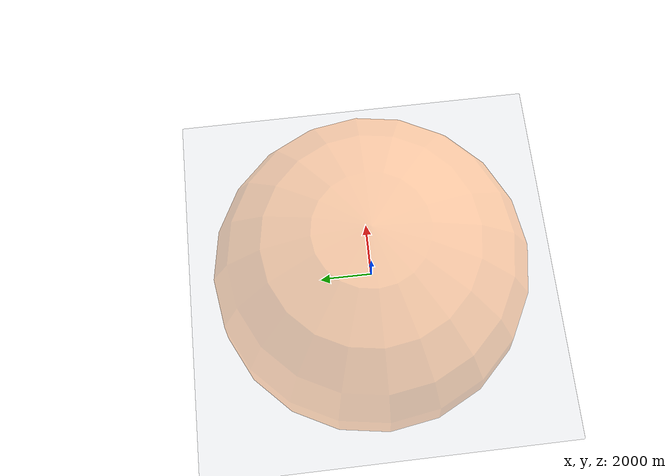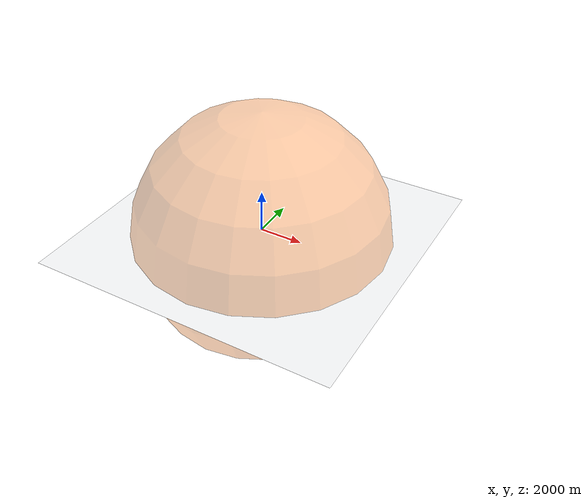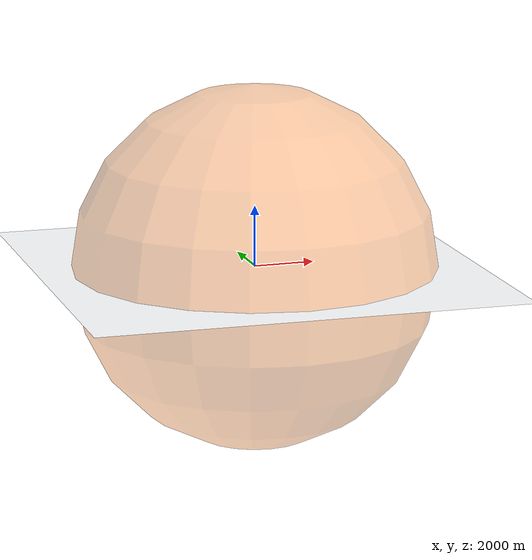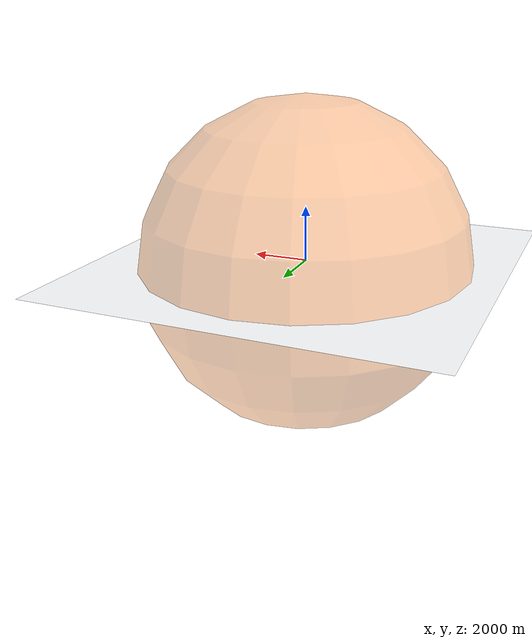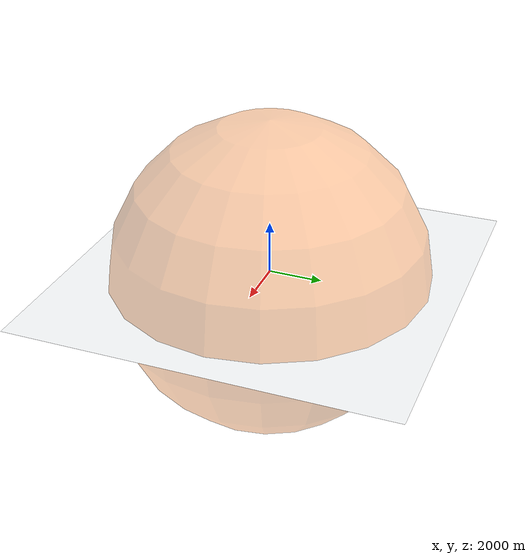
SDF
<?xml version="1.0" ?>
<!-- Ground + target sphere + interceptor boxes. Poses updated via gz set_pose from ROS nodes. -->
<sdf version="1.8">
  <world name="counter_uas_target">
    <scene>
      <ambient>0.75 0.75 0.78 1</ambient>
      <background>0.82 0.84 0.88 1</background>
      <grid>true</grid>
    </scene>
    <gui fullscreen="0">
      <plugin filename="MinimalScene" name="3D View">
        <gz-gui>
          <title>3D View</title>
          <property type="bool" key="showTitleBar">false</property>
          <property type="string" key="state">docked</property>
        </gz-gui>
        <engine>ogre2</engine>
        <scene>scene</scene>
        <ambient_light>0.55 0.55 0.58</ambient_light>
        <background_color>0.82 0.84 0.88</background_color>
        <!-- x y z roll pitch yaw (rad); framed on asset + traffic near origin -->
        <camera_pose>-4200 -3200 1800 0 0.42 0.85</camera_pose>
        <camera_clip>
          <near>1</near>
          <!-- default far (~1000) culls km-scale domes → empty-looking view -->
          <far>80000</far>
        </camera_clip>
      </plugin>
      <plugin filename="EntityContextMenuPlugin" name="Entity context menu">
        <gz-gui>
          <property key="state" type="string">floating</property>
          <property key="width" type="double">5</property>
          <property key="height" type="double">5</property>
          <property key="showTitleBar" type="bool">false</property>
        </gz-gui>
      </plugin>
      <plugin filename="GzSceneManager" name="Scene Manager">
        <gz-gui>
          <property key="resizable" type="bool">false</property>
          <property key="width" type="double">5</property>
          <property key="height" type="double">5</property>
          <property key="state" type="string">floating</property>
          <property key="showTitleBar" type="bool">false</property>
        </gz-gui>
      </plugin>
      <plugin filename="InteractiveViewControl" name="Interactive view control">
        <gz-gui>
          <property key="resizable" type="bool">false</property>
          <property key="width" type="double">5</property>
          <property key="height" type="double">5</property>
          <property key="state" type="string">floating</property>
          <property key="showTitleBar" type="bool">false</property>
        </gz-gui>
      </plugin>
      <plugin filename="CameraTracking" name="Camera Tracking">
        <gz-gui>
          <property key="resizable" type="bool">false</property>
          <property key="width" type="double">5</property>
          <property key="height" type="double">5</property>
          <property key="state" type="string">floating</property>
          <property key="showTitleBar" type="bool">false</property>
        </gz-gui>
      </plugin>
      <plugin filename="WorldControl" name="World control">
        <gz-gui>
          <title>World control</title>
          <property type="bool" key="showTitleBar">false</property>
          <property type="bool" key="resizable">false</property>
          <property type="double" key="height">72</property>
          <property type="double" key="z">1</property>
          <property type="string" key="state">floating</property>
          <anchors target="3D View">
            <line own="left" target="left"/>
            <line own="bottom" target="bottom"/>
          </anchors>
        </gz-gui>
        <play_pause>true</play_pause>
        <step>true</step>
        <start_paused>false</start_paused>
        <use_event>true</use_event>
      </plugin>
      <plugin filename="WorldStats" name="World stats">
        <gz-gui>
          <title>World stats</title>
          <property type="bool" key="showTitleBar">false</property>
          <property type="bool" key="resizable">false</property>
          <property type="double" key="height">110</property>
          <property type="double" key="width">290</property>
          <property type="double" key="z">1</property>
          <property type="string" key="state">floating</property>
          <anchors target="3D View">
            <line own="right" target="right"/>
            <line own="bottom" target="bottom"/>
          </anchors>
        </gz-gui>
        <sim_time>true</sim_time>
        <real_time>true</real_time>
        <real_time_factor>true</real_time_factor>
        <iterations>true</iterations>
      </plugin>
      <plugin filename="ComponentInspector" name="Component inspector">
        <gz-gui>
          <property type="string" key="state">docked</property>
        </gz-gui>
      </plugin>
      <plugin filename="EntityTree" name="Entity tree">
        <gz-gui>
          <property type="string" key="state">docked</property>
        </gz-gui>
      </plugin>
    </gui>
    <physics name="1ms" type="ignored">
      <max_step_size>0.001</max_step_size>
      <real_time_factor>1.0</real_time_factor>
    </physics>
    <plugin filename="gz-sim-physics-system" name="gz::sim::systems::Physics"/>
    <plugin filename="gz-sim-user-commands-system" name="gz::sim::systems::UserCommands"/>
    <plugin filename="gz-sim-scene-broadcaster-system" name="gz::sim::systems::SceneBroadcaster"/>
    <plugin filename="gz-sim-contact-system" name="gz::sim::systems::Contact"/>

    <light type="directional" name="sun">
      <cast_shadows>false</cast_shadows>
      <pose>0 0 10 0 0 0</pose>
      <diffuse>0.9 0.9 0.9 1</diffuse>
      <specular>0.3 0.3 0.3 1</specular>
      <attenuation>
        <range>25000</range>
        <constant>0.9</constant>
        <linear>0.01</linear>
        <quadratic>0.001</quadratic>
      </attenuation>
      <direction>-0.5 0.1 -0.9</direction>
    </light>

    <model name="ground_plane">
      <static>true</static>
      <link name="link">
        <collision name="collision">
          <geometry>
            <plane>
              <normal>0 0 1</normal>
              <size>14000 14000</size>
            </plane>
          </geometry>
        </collision>
        <visual name="visual">
          <geometry>
            <plane>
              <normal>0 0 1</normal>
              <size>14000 14000</size>
            </plane>
          </geometry>
          <material>
            <ambient>0.82 0.84 0.86 1</ambient>
            <diffuse>0.88 0.9 0.92 1</diffuse>
          </material>
        </visual>
      </link>
    </model>

    <!-- Multi-target world: three hostiles as neutral boxes (no orange/pink spheres). -->
    <model name="sphere_target_0">
      <static>false</static>
      <!-- Matches gazebo_target_multi.launch.py targets_cfg sphere_target_0 -->
      <pose>0 0 36 0 0 0</pose>
      <link name="base_link">
        <gravity>false</gravity>
        <inertial>
          <mass>1.0</mass>
          <inertia>
            <ixx>0.121</ixx>
            <ixy>0.0</ixy>
            <ixz>0.0</ixz>
            <iyy>0.121</iyy>
            <iyz>0.0</iyz>
            <izz>0.121</izz>
          </inertia>
        </inertial>
        <collision name="col">
          <geometry>
            <sphere>
              <radius>0.72</radius>
            </sphere>
          </geometry>
        </collision>
        <sensor name="impact_contact" type="contact">
          <always_on>1</always_on>
          <update_rate>200</update_rate>
          <contact>
            <collision>col</collision>
            <topic>/counter_uas_sphere_target_0_contacts</topic>
          </contact>
        </sensor>
        <visual name="vis">
          <geometry>
            <box><size>2.2 2.2 1.0</size></box>
          </geometry>
          <material>
            <ambient>0.22 0.24 0.28 1</ambient>
            <diffuse>0.32 0.34 0.4 1</diffuse>
            <emissive>0.05 0.05 0.08 1</emissive>
          </material>
        </visual>
        <!-- Sight halo (red): visible at km-scale camera distance; collision unchanged. -->
        <visual name="sight_icon">
          <pose>0 0 0.5 0 0 0</pose>
          <geometry>
            <sphere><radius>60</radius></sphere>
          </geometry>
          <material>
            <ambient>0.85 0.12 0.12 1</ambient>
            <diffuse>1.0 0.2 0.2 1</diffuse>
            <emissive>0.4 0.05 0.05 1</emissive>
          </material>
          <transparency>0.55</transparency>
          <cast_shadows>false</cast_shadows>
        </visual>
      </link>
    </model>
    <model name="sphere_target_1">
      <static>false</static>
      <pose>-6 5 34 0 0 0</pose>
      <link name="base_link">
        <gravity>false</gravity>
        <inertial>
          <mass>1.0</mass>
          <inertia>
            <ixx>0.121</ixx>
            <ixy>0.0</ixy>
            <ixz>0.0</ixz>
            <iyy>0.121</iyy>
            <iyz>0.0</iyz>
            <izz>0.121</izz>
          </inertia>
        </inertial>
        <collision name="col">
          <geometry>
            <sphere>
              <radius>0.72</radius>
            </sphere>
          </geometry>
        </collision>
        <sensor name="impact_contact" type="contact">
          <always_on>1</always_on>
          <update_rate>200</update_rate>
          <contact>
            <collision>col</collision>
            <topic>/counter_uas_sphere_target_1_contacts</topic>
          </contact>
        </sensor>
        <visual name="vis">
          <geometry>
            <box><size>2.2 2.2 1.0</size></box>
          </geometry>
          <material>
            <ambient>0.18 0.28 0.42 1</ambient>
            <diffuse>0.25 0.38 0.55 1</diffuse>
            <emissive>0.04 0.06 0.12 1</emissive>
          </material>
        </visual>
        <!-- Sight halo (orange): distinguishes target_1 from the primary (red) at distance. -->
        <visual name="sight_icon">
          <pose>0 0 0.5 0 0 0</pose>
          <geometry>
            <sphere><radius>50</radius></sphere>
          </geometry>
          <material>
            <ambient>0.95 0.45 0.1 1</ambient>
            <diffuse>1.0 0.55 0.18 1</diffuse>
            <emissive>0.35 0.12 0.02 1</emissive>
          </material>
          <transparency>0.55</transparency>
          <cast_shadows>false</cast_shadows>
        </visual>
      </link>
    </model>
    <model name="sphere_target_2">
      <static>false</static>
      <pose>6 -5 32 0 0 0</pose>
      <link name="base_link">
        <gravity>false</gravity>
        <inertial>
          <mass>1.0</mass>
          <inertia>
            <ixx>0.121</ixx>
            <ixy>0.0</ixy>
            <ixz>0.0</ixz>
            <iyy>0.121</iyy>
            <iyz>0.0</iyz>
            <izz>0.121</izz>
          </inertia>
        </inertial>
        <collision name="col">
          <geometry>
            <sphere>
              <radius>0.72</radius>
            </sphere>
          </geometry>
        </collision>
        <sensor name="impact_contact" type="contact">
          <always_on>1</always_on>
          <update_rate>200</update_rate>
          <contact>
            <collision>col</collision>
            <topic>/counter_uas_sphere_target_2_contacts</topic>
          </contact>
        </sensor>
        <visual name="vis">
          <geometry>
            <box><size>2.2 2.2 1.0</size></box>
          </geometry>
          <material>
            <ambient>0.28 0.26 0.3 1</ambient>
            <diffuse>0.4 0.38 0.45 1</diffuse>
            <emissive>0.06 0.05 0.07 1</emissive>
          </material>
        </visual>
        <!-- Sight halo (magenta): distinguishes target_2 at km-scale distance. -->
        <visual name="sight_icon">
          <pose>0 0 0.5 0 0 0</pose>
          <geometry>
            <sphere><radius>50</radius></sphere>
          </geometry>
          <material>
            <ambient>0.85 0.15 0.55 1</ambient>
            <diffuse>1.0 0.22 0.7 1</diffuse>
            <emissive>0.32 0.04 0.18 1</emissive>
          </material>
          <transparency>0.55</transparency>
          <cast_shadows>false</cast_shadows>
        </visual>
      </link>
    </model>

    <!-- Translucent 3D shells — radii must match gazebo_target.launch.py DOME_OUTER/MIDDLE/INNER_M -->
    <model name="danger_dome_outer">
      <static>true</static>
      <pose>0 0 0 0 0 0</pose>
      <link name="link">
        <visual name="shell">
          <geometry><sphere><radius>6000</radius></sphere></geometry>
          <material>
            <ambient>0.98 0.42 0.15 1</ambient>
            <diffuse>1.0 0.55 0.22 1</diffuse>
            <emissive>0.08 0.03 0.01 1</emissive>
          </material>
          <transparency>0.58</transparency>
          <cast_shadows>false</cast_shadows>
        </visual>
      </link>
    </model>
    <model name="danger_dome_mid">
      <static>true</static>
      <pose>0 0 0 0 0 0</pose>
      <link name="link">
        <visual name="shell">
          <geometry><sphere><radius>3000</radius></sphere></geometry>
          <material>
            <ambient>0.98 0.88 0.2 1</ambient>
            <diffuse>1.0 0.95 0.35 1</diffuse>
            <emissive>0.06 0.05 0.02 1</emissive>
          </material>
          <transparency>0.52</transparency>
          <cast_shadows>false</cast_shadows>
        </visual>
      </link>
    </model>
    <model name="danger_dome_inner">
      <static>true</static>
      <pose>0 0 0 0 0 0</pose>
      <link name="link">
        <visual name="shell">
          <geometry><sphere><radius>1200</radius></sphere></geometry>
          <material>
            <ambient>1.0 0.25 0.25 1</ambient>
            <diffuse>1.0 0.42 0.42 1</diffuse>
            <emissive>0.1 0.03 0.03 1</emissive>
          </material>
          <transparency>0.46</transparency>
          <cast_shadows>false</cast_shadows>
        </visual>
      </link>
    </model>

    <!-- Interceptor quadcopters: forward +X; non-static so gz set_pose from ROS moves visuals. -->
    <model name="interceptor_0">
      <static>false</static>
      <pose>-5 0 0 0 0 0</pose>
      <link name="base_link">
        <gravity>false</gravity>
        <inertial>
          <mass>1.0</mass>
          <inertia>
            <ixx>0.05</ixx>
            <ixy>0.0</ixy>
            <ixz>0.0</ixz>
            <iyy>0.05</iyy>
            <iyz>0.0</iyz>
            <izz>0.05</izz>
          </inertia>
        </inertial>
        <collision name="hull">
          <pose>0 0 0.225 0 0 0</pose>
          <geometry>
            <box>
              <size>1.3 1.3 0.45</size>
            </box>
          </geometry>
        </collision>
        <visual name="body">
          <pose>0 0 0.225 0 0 0</pose>
          <geometry>
            <box>
              <size>0.275 0.275 0.1</size>
            </box>
          </geometry>
          <material>
            <ambient>0.12 0.22 0.55 1</ambient>
            <diffuse>0.2 0.35 0.95 1</diffuse>
          </material>
        </visual>
        <visual name="arm_px">
          <pose>0.35 0 0.225 0 0 0</pose>
          <geometry>
            <box>
              <size>0.35 0.075 0.075</size>
            </box>
          </geometry>
          <material>
            <ambient>0.15 0.25 0.6 1</ambient>
            <diffuse>0.25 0.4 1.0 1</diffuse>
          </material>
        </visual>
        <visual name="arm_nx">
          <pose>-0.35 0 0.225 0 0 0</pose>
          <geometry>
            <box>
              <size>0.35 0.075 0.075</size>
            </box>
          </geometry>
          <material>
            <ambient>0.15 0.25 0.6 1</ambient>
            <diffuse>0.25 0.4 1.0 1</diffuse>
          </material>
        </visual>
        <visual name="arm_py">
          <pose>0 0.35 0.225 0 0 0</pose>
          <geometry>
            <box>
              <size>0.075 0.35 0.075</size>
            </box>
          </geometry>
          <material>
            <ambient>0.15 0.25 0.6 1</ambient>
            <diffuse>0.25 0.4 1.0 1</diffuse>
          </material>
        </visual>
        <visual name="arm_ny">
          <pose>0 -0.35 0.225 0 0 0</pose>
          <geometry>
            <box>
              <size>0.075 0.35 0.075</size>
            </box>
          </geometry>
          <material>
            <ambient>0.15 0.25 0.6 1</ambient>
            <diffuse>0.25 0.4 1.0 1</diffuse>
          </material>
        </visual>
        <visual name="prop_px">
          <pose>0.5 0 0.225 0 0 0</pose>
          <geometry>
            <cylinder>
              <radius>0.15</radius>
              <length>0.0375</length>
            </cylinder>
          </geometry>
          <material>
            <ambient>0.25 0.25 0.28 1</ambient>
            <diffuse>0.35 0.35 0.4 1</diffuse>
          </material>
        </visual>
        <visual name="prop_nx">
          <pose>-0.5 0 0.225 0 0 0</pose>
          <geometry>
            <cylinder>
              <radius>0.15</radius>
              <length>0.0375</length>
            </cylinder>
          </geometry>
          <material>
            <ambient>0.25 0.25 0.28 1</ambient>
            <diffuse>0.35 0.35 0.4 1</diffuse>
          </material>
        </visual>
        <visual name="prop_py">
          <pose>0 0.5 0.225 0 0 0</pose>
          <geometry>
            <cylinder>
              <radius>0.15</radius>
              <length>0.0375</length>
            </cylinder>
          </geometry>
          <material>
            <ambient>0.25 0.25 0.28 1</ambient>
            <diffuse>0.35 0.35 0.4 1</diffuse>
          </material>
        </visual>
        <visual name="prop_ny">
          <pose>0 -0.5 0.225 0 0 0</pose>
          <geometry>
            <cylinder>
              <radius>0.15</radius>
              <length>0.0375</length>
            </cylinder>
          </geometry>
          <material>
            <ambient>0.25 0.25 0.28 1</ambient>
            <diffuse>0.35 0.35 0.4 1</diffuse>
          </material>
        </visual>
        <visual name="sight_icon">
          <pose>0 0 0.35 0 0 0</pose>
          <geometry>
            <sphere><radius>20</radius></sphere>
          </geometry>
          <material>
            <ambient>0.15 0.35 0.85 1</ambient>
            <diffuse>0.22 0.45 1.0 1</diffuse>
            <emissive>0.04 0.08 0.18 1</emissive>
          </material>
          <transparency>0.7</transparency>
          <cast_shadows>false</cast_shadows>
        </visual>
      </link>
    </model>

    <model name="interceptor_1">
      <static>false</static>
      <pose>4 -4 0 0 0 0</pose>
      <link name="base_link">
        <gravity>false</gravity>
        <inertial>
          <mass>1.0</mass>
          <inertia>
            <ixx>0.05</ixx>
            <ixy>0.0</ixy>
            <ixz>0.0</ixz>
            <iyy>0.05</iyy>
            <iyz>0.0</iyz>
            <izz>0.05</izz>
          </inertia>
        </inertial>
        <collision name="hull">
          <pose>0 0 0.225 0 0 0</pose>
          <geometry>
            <box>
              <size>1.3 1.3 0.45</size>
            </box>
          </geometry>
        </collision>
        <visual name="body">
          <pose>0 0 0.225 0 0 0</pose>
          <geometry>
            <box>
              <size>0.275 0.275 0.1</size>
            </box>
          </geometry>
          <material>
            <ambient>0.1 0.45 0.15 1</ambient>
            <diffuse>0.15 0.75 0.25 1</diffuse>
          </material>
        </visual>
        <visual name="arm_px">
          <pose>0.35 0 0.225 0 0 0</pose>
          <geometry>
            <box>
              <size>0.35 0.075 0.075</size>
            </box>
          </geometry>
          <material>
            <ambient>0.12 0.5 0.18 1</ambient>
            <diffuse>0.2 0.8 0.3 1</diffuse>
          </material>
        </visual>
        <visual name="arm_nx">
          <pose>-0.35 0 0.225 0 0 0</pose>
          <geometry>
            <box>
              <size>0.35 0.075 0.075</size>
            </box>
          </geometry>
          <material>
            <ambient>0.12 0.5 0.18 1</ambient>
            <diffuse>0.2 0.8 0.3 1</diffuse>
          </material>
        </visual>
        <visual name="arm_py">
          <pose>0 0.35 0.225 0 0 0</pose>
          <geometry>
            <box>
              <size>0.075 0.35 0.075</size>
            </box>
          </geometry>
          <material>
            <ambient>0.12 0.5 0.18 1</ambient>
            <diffuse>0.2 0.8 0.3 1</diffuse>
          </material>
        </visual>
        <visual name="arm_ny">
          <pose>0 -0.35 0.225 0 0 0</pose>
          <geometry>
            <box>
              <size>0.075 0.35 0.075</size>
            </box>
          </geometry>
          <material>
            <ambient>0.12 0.5 0.18 1</ambient>
            <diffuse>0.2 0.8 0.3 1</diffuse>
          </material>
        </visual>
        <visual name="prop_px">
          <pose>0.5 0 0.225 0 0 0</pose>
          <geometry>
            <cylinder>
              <radius>0.15</radius>
              <length>0.0375</length>
            </cylinder>
          </geometry>
          <material>
            <ambient>0.25 0.28 0.25 1</ambient>
            <diffuse>0.35 0.4 0.35 1</diffuse>
          </material>
        </visual>
        <visual name="prop_nx">
          <pose>-0.5 0 0.225 0 0 0</pose>
          <geometry>
            <cylinder>
              <radius>0.15</radius>
              <length>0.0375</length>
            </cylinder>
          </geometry>
          <material>
            <ambient>0.25 0.28 0.25 1</ambient>
            <diffuse>0.35 0.4 0.35 1</diffuse>
          </material>
        </visual>
        <visual name="prop_py">
          <pose>0 0.5 0.225 0 0 0</pose>
          <geometry>
            <cylinder>
              <radius>0.15</radius>
              <length>0.0375</length>
            </cylinder>
          </geometry>
          <material>
            <ambient>0.25 0.28 0.25 1</ambient>
            <diffuse>0.35 0.4 0.35 1</diffuse>
          </material>
        </visual>
        <visual name="prop_ny">
          <pose>0 -0.5 0.225 0 0 0</pose>
          <geometry>
            <cylinder>
              <radius>0.15</radius>
              <length>0.0375</length>
            </cylinder>
          </geometry>
          <material>
            <ambient>0.25 0.28 0.25 1</ambient>
            <diffuse>0.35 0.4 0.35 1</diffuse>
          </material>
        </visual>
        <visual name="sight_icon">
          <pose>0 0 0.35 0 0 0</pose>
          <geometry>
            <sphere><radius>20</radius></sphere>
          </geometry>
          <material>
            <ambient>0.12 0.65 0.22 1</ambient>
            <diffuse>0.18 0.9 0.3 1</diffuse>
            <emissive>0.03 0.12 0.05 1</emissive>
          </material>
          <transparency>0.7</transparency>
          <cast_shadows>false</cast_shadows>
        </visual>
      </link>
    </model>

    <model name="interceptor_2">
      <static>false</static>
      <pose>-4 5 0 0 0 0</pose>
      <link name="base_link">
        <gravity>false</gravity>
        <inertial>
          <mass>1.0</mass>
          <inertia>
            <ixx>0.05</ixx>
            <ixy>0.0</ixy>
            <ixz>0.0</ixz>
            <iyy>0.05</iyy>
            <iyz>0.0</iyz>
            <izz>0.05</izz>
          </inertia>
        </inertial>
        <collision name="hull">
          <pose>0 0 0.225 0 0 0</pose>
          <geometry>
            <box>
              <size>1.3 1.3 0.45</size>
            </box>
          </geometry>
        </collision>
        <visual name="body">
          <pose>0 0 0.225 0 0 0</pose>
          <geometry>
            <box>
              <size>0.275 0.275 0.1</size>
            </box>
          </geometry>
          <material>
            <ambient>0.55 0.12 0.45 1</ambient>
            <diffuse>0.85 0.2 0.75 1</diffuse>
          </material>
        </visual>
        <visual name="arm_px">
          <pose>0.35 0 0.225 0 0 0</pose>
          <geometry>
            <box>
              <size>0.35 0.075 0.075</size>
            </box>
          </geometry>
          <material>
            <ambient>0.6 0.15 0.5 1</ambient>
            <diffuse>0.9 0.22 0.8 1</diffuse>
          </material>
        </visual>
        <visual name="arm_nx">
          <pose>-0.35 0 0.225 0 0 0</pose>
          <geometry>
            <box>
              <size>0.35 0.075 0.075</size>
            </box>
          </geometry>
          <material>
            <ambient>0.6 0.15 0.5 1</ambient>
            <diffuse>0.9 0.22 0.8 1</diffuse>
          </material>
        </visual>
        <visual name="arm_py">
          <pose>0 0.35 0.225 0 0 0</pose>
          <geometry>
            <box>
              <size>0.075 0.35 0.075</size>
            </box>
          </geometry>
          <material>
            <ambient>0.6 0.15 0.5 1</ambient>
            <diffuse>0.9 0.22 0.8 1</diffuse>
          </material>
        </visual>
        <visual name="arm_ny">
          <pose>0 -0.35 0.225 0 0 0</pose>
          <geometry>
            <box>
              <size>0.075 0.35 0.075</size>
            </box>
          </geometry>
          <material>
            <ambient>0.6 0.15 0.5 1</ambient>
            <diffuse>0.9 0.22 0.8 1</diffuse>
          </material>
        </visual>
        <visual name="prop_px">
          <pose>0.5 0 0.225 0 0 0</pose>
          <geometry>
            <cylinder>
              <radius>0.15</radius>
              <length>0.0375</length>
            </cylinder>
          </geometry>
          <material>
            <ambient>0.28 0.25 0.28 1</ambient>
            <diffuse>0.4 0.35 0.4 1</diffuse>
          </material>
        </visual>
        <visual name="prop_nx">
          <pose>-0.5 0 0.225 0 0 0</pose>
          <geometry>
            <cylinder>
              <radius>0.15</radius>
              <length>0.0375</length>
            </cylinder>
          </geometry>
          <material>
            <ambient>0.28 0.25 0.28 1</ambient>
            <diffuse>0.4 0.35 0.4 1</diffuse>
          </material>
        </visual>
        <visual name="prop_py">
          <pose>0 0.5 0.225 0 0 0</pose>
          <geometry>
            <cylinder>
              <radius>0.15</radius>
              <length>0.0375</length>
            </cylinder>
          </geometry>
          <material>
            <ambient>0.28 0.25 0.28 1</ambient>
            <diffuse>0.4 0.35 0.4 1</diffuse>
          </material>
        </visual>
        <visual name="prop_ny">
          <pose>0 -0.5 0.225 0 0 0</pose>
          <geometry>
            <cylinder>
              <radius>0.15</radius>
              <length>0.0375</length>
            </cylinder>
          </geometry>
          <material>
            <ambient>0.28 0.25 0.28 1</ambient>
            <diffuse>0.4 0.35 0.4 1</diffuse>
          </material>
        </visual>
        <visual name="sight_icon">
          <pose>0 0 0.35 0 0 0</pose>
          <geometry>
            <sphere><radius>20</radius></sphere>
          </geometry>
          <material>
            <ambient>0.65 0.15 0.55 1</ambient>
            <diffuse>0.88 0.22 0.76 1</diffuse>
            <emissive>0.12 0.03 0.1 1</emissive>
          </material>
          <transparency>0.7</transparency>
          <cast_shadows>false</cast_shadows>
        </visual>
      </link>
    </model>
    </world>
</sdf>
